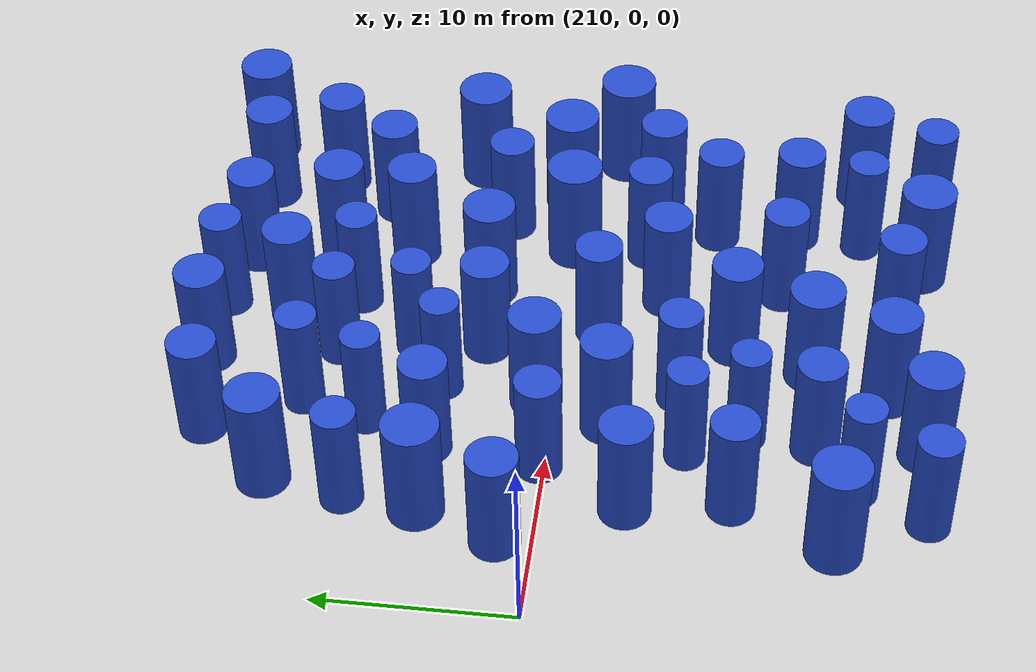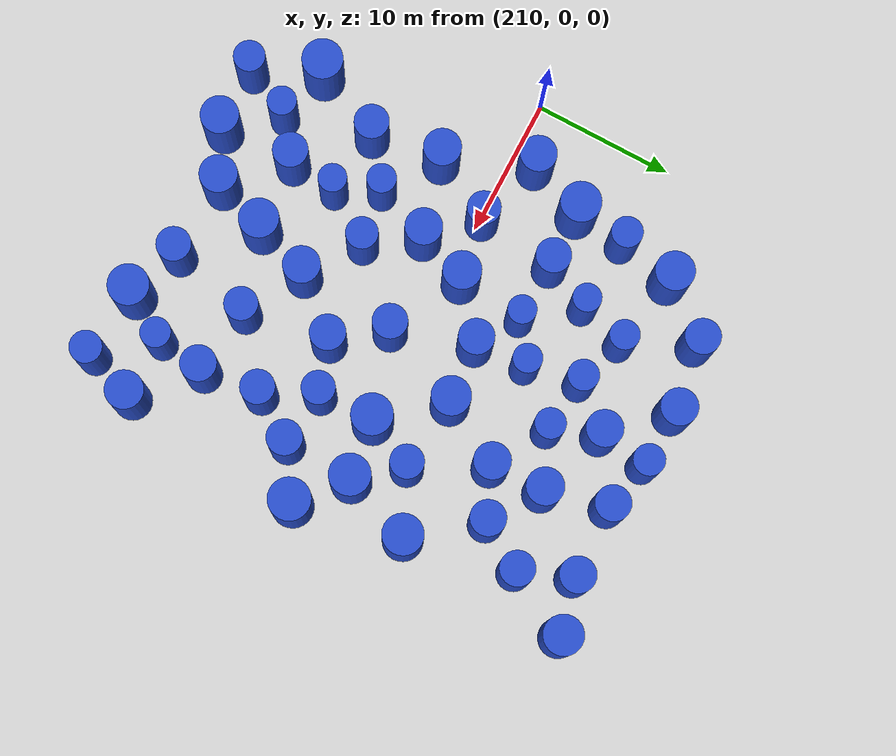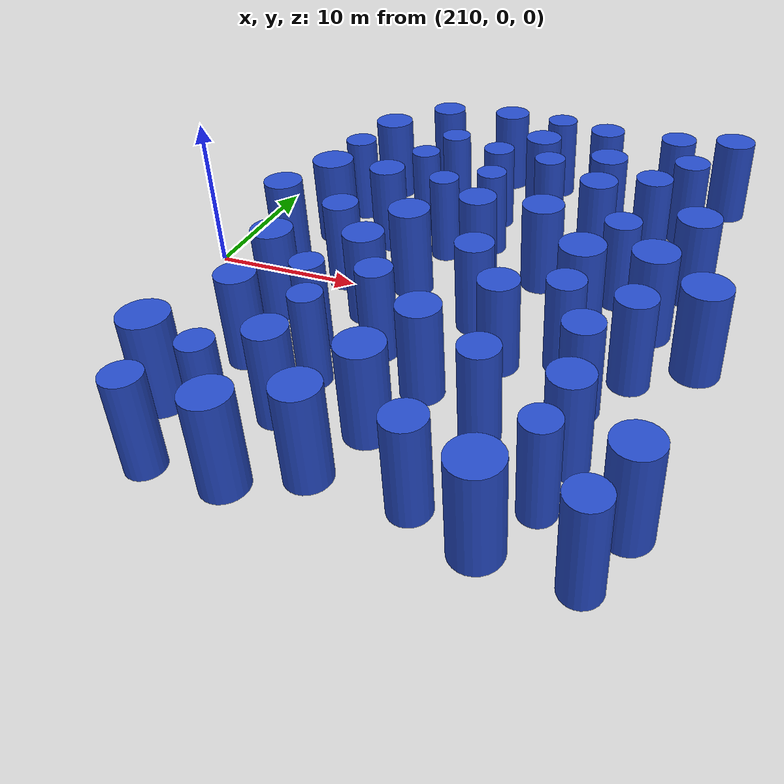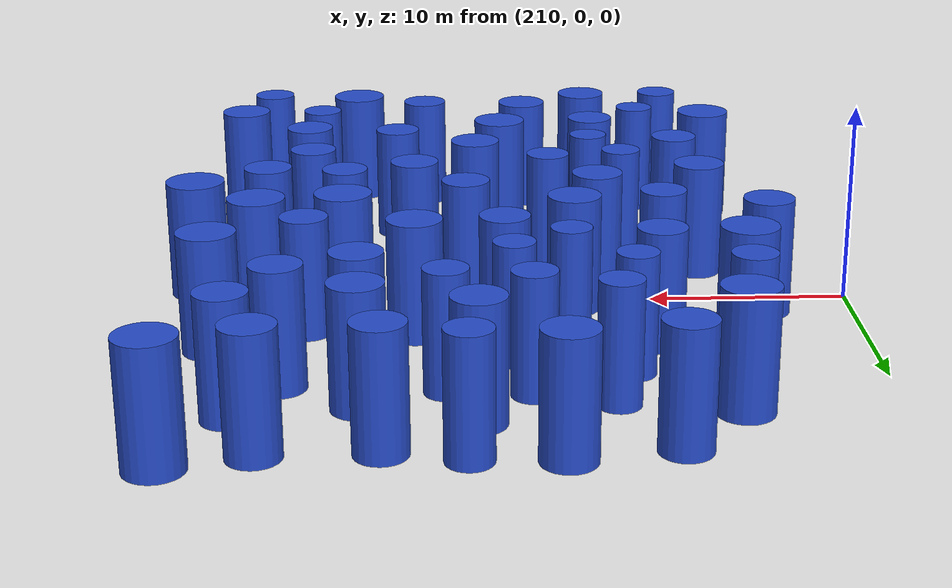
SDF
<sdf version="1.7">
 <world name="default">
  <model name="1">
   <static>1</static>
   <link name="link">
    <inertial>
     <mass>2</mass>
     <inertia><ixx>6.72296</ixx><ixy>0</ixy><ixz>0</ixz><iyy>6.72296</iyy><iyz>0</iyz><izz>1.44593</izz></inertia>
    </inertial>
    <collision name="collision">
     <geometry><cylinder><length>6</length><radius>1.20247</radius></cylinder></geometry>
     <surface><contact><collide_without_contact>1</collide_without_contact></contact></surface>
    </collision>
    <visual name="visual">
     <geometry><cylinder><length>6</length><radius>1.20247</radius></cylinder></geometry>
     <material>
      <script><uri>file://media/materials/scripts/gazebo.material</uri><name>Gazebo/Blue</name></script>
     </material>
    </visual>
    <gravity>0</gravity>
   </link>
   <pose>237.457 -7.39447 3 0 -0 0</pose>
  </model>
  <model name="12">
   <static>1</static>
   <link name="link">
    <inertial>
     <mass>2</mass>
     <inertia><ixx>7.10079</ixx><ixy>0</ixy><ixz>0</ixz><iyy>7.10079</iyy><iyz>0</iyz><izz>2.20157</izz></inertia>
    </inertial>
    <collision name="collision">
     <geometry><cylinder><length>6</length><radius>1.48377</radius></cylinder></geometry>
     <surface><contact><collide_without_contact>1</collide_without_contact></contact></surface>
    </collision>
    <visual name="visual">
     <geometry><cylinder><length>6</length><radius>1.48377</radius></cylinder></geometry>
     <material>
      <script><uri>file://media/materials/scripts/gazebo.material</uri><name>Gazebo/Blue</name></script>
     </material>
    </visual>
    <gravity>0</gravity>
   </link>
   <pose>243.054 -1.92681 3 0 -0 0</pose>
  </model>
  <model name="14">
   <static>1</static>
   <link name="link">
    <inertial>
     <mass>2</mass>
     <inertia><ixx>6.81362</ixx><ixy>0</ixy><ixz>0</ixz><iyy>6.81362</iyy><iyz>0</iyz><izz>1.62724</izz></inertia>
    </inertial>
    <collision name="collision">
     <geometry><cylinder><length>6</length><radius>1.27563</radius></cylinder></geometry>
     <surface><contact><collide_without_contact>1</collide_without_contact></contact></surface>
    </collision>
    <visual name="visual">
     <geometry><cylinder><length>6</length><radius>1.27563</radius></cylinder></geometry>
     <material>
      <script><uri>file://media/materials/scripts/gazebo.material</uri><name>Gazebo/Blue</name></script>
     </material>
    </visual>
    <gravity>0</gravity>
   </link>
   <pose>214.441 1.7766 3 0 -0 0</pose>
  </model>
  <model name="40">
   <static>1</static>
   <link name="link">
    <inertial>
     <mass>2</mass>
     <inertia><ixx>6.63334</ixx><ixy>0</ixy><ixz>0</ixz><iyy>6.63334</iyy><iyz>0</iyz><izz>1.26667</izz></inertia>
    </inertial>
    <collision name="collision">
     <geometry><cylinder><length>6</length><radius>1.12547</radius></cylinder></geometry>
     <surface><contact><collide_without_contact>1</collide_without_contact></contact></surface>
    </collision>
    <visual name="visual">
     <geometry><cylinder><length>6</length><radius>1.12547</radius></cylinder></geometry>
     <material>
      <script><uri>file://media/materials/scripts/gazebo.material</uri><name>Gazebo/Blue</name></script>
     </material>
    </visual>
    <gravity>0</gravity>
   </link>
   <pose>224.929 -6.194 3 0 -0 0</pose>
  </model>
  <model name="43">
   <static>1</static>
   <link name="link">
    <inertial>
     <mass>2</mass>
     <inertia><ixx>6.85876</ixx><ixy>0</ixy><ixz>0</ixz><iyy>6.85876</iyy><iyz>0</iyz><izz>1.71751</izz></inertia>
    </inertial>
    <collision name="collision">
     <geometry><cylinder><length>6</length><radius>1.31054</radius></cylinder></geometry>
     <surface><contact><collide_without_contact>1</collide_without_contact></contact></surface>
    </collision>
    <visual name="visual">
     <geometry><cylinder><length>6</length><radius>1.31054</radius></cylinder></geometry>
     <material>
      <script><uri>file://media/materials/scripts/gazebo.material</uri><name>Gazebo/Blue</name></script>
     </material>
    </visual>
    <gravity>0</gravity>
   </link>
   <pose>217.121 -4.18579 3 0 -0 0</pose>
  </model>
  <model name="49">
   <static>1</static>
   <link name="link">
    <inertial>
     <mass>2</mass>
     <inertia><ixx>6.8201</ixx><ixy>0</ixy><ixz>0</ixz><iyy>6.8201</iyy><iyz>0</iyz><izz>1.6402</izz></inertia>
    </inertial>
    <collision name="collision">
     <geometry><cylinder><length>6</length><radius>1.2807</radius></cylinder></geometry>
     <surface><contact><collide_without_contact>1</collide_without_contact></contact></surface>
    </collision>
    <visual name="visual">
     <geometry><cylinder><length>6</length><radius>1.2807</radius></cylinder></geometry>
     <material>
      <script><uri>file://media/materials/scripts/gazebo.material</uri><name>Gazebo/Blue</name></script>
     </material>
    </visual>
    <gravity>0</gravity>
   </link>
   <pose>228.991 14.3717 3 0 -0 0</pose>
  </model>
  <model name="53">
   <static>1</static>
   <link name="link">
    <inertial>
     <mass>2</mass>
     <inertia><ixx>6.61246</ixx><ixy>0</ixy><ixz>0</ixz><iyy>6.61246</iyy><iyz>0</iyz><izz>1.22492</izz></inertia>
    </inertial>
    <collision name="collision">
     <geometry><cylinder><length>6</length><radius>1.10676</radius></cylinder></geometry>
     <surface><contact><collide_without_contact>1</collide_without_contact></contact></surface>
    </collision>
    <visual name="visual">
     <geometry><cylinder><length>6</length><radius>1.10676</radius></cylinder></geometry>
     <material>
      <script><uri>file://media/materials/scripts/gazebo.material</uri><name>Gazebo/Blue</name></script>
     </material>
    </visual>
    <gravity>0</gravity>
   </link>
   <pose>217.716 -18.8042 3 0 -0 0</pose>
  </model>
  <model name="57">
   <static>1</static>
   <link name="link">
    <inertial>
     <mass>2</mass>
     <inertia><ixx>6.75214</ixx><ixy>0</ixy><ixz>0</ixz><iyy>6.75214</iyy><iyz>0</iyz><izz>1.50428</izz></inertia>
    </inertial>
    <collision name="collision">
     <geometry><cylinder><length>6</length><radius>1.22649</radius></cylinder></geometry>
     <surface><contact><collide_without_contact>1</collide_without_contact></contact></surface>
    </collision>
    <visual name="visual">
     <geometry><cylinder><length>6</length><radius>1.22649</radius></cylinder></geometry>
     <material>
      <script><uri>file://media/materials/scripts/gazebo.material</uri><name>Gazebo/Blue</name></script>
     </material>
    </visual>
    <gravity>0</gravity>
   </link>
   <pose>239.985 13.568 3 0 -0 0</pose>
  </model>
  <model name="61">
   <static>1</static>
   <link name="link">
    <inertial>
     <mass>2</mass>
     <inertia><ixx>6.52122</ixx><ixy>0</ixy><ixz>0</ixz><iyy>6.52122</iyy><iyz>0</iyz><izz>1.04245</izz></inertia>
    </inertial>
    <collision name="collision">
     <geometry><cylinder><length>6</length><radius>1.021</radius></cylinder></geometry>
     <surface><contact><collide_without_contact>1</collide_without_contact></contact></surface>
    </collision>
    <visual name="visual">
     <geometry><cylinder><length>6</length><radius>1.021</radius></cylinder></geometry>
     <material>
      <script><uri>file://media/materials/scripts/gazebo.material</uri><name>Gazebo/Blue</name></script>
     </material>
    </visual>
    <gravity>0</gravity>
   </link>
   <pose>227.232 7.64189 3 0 -0 0</pose>
  </model>
  <model name="92">
   <static>1</static>
   <link name="link">
    <inertial>
     <mass>2</mass>
     <inertia><ixx>6.77017</ixx><ixy>0</ixy><ixz>0</ixz><iyy>6.77017</iyy><iyz>0</iyz><izz>1.54035</izz></inertia>
    </inertial>
    <collision name="collision">
     <geometry><cylinder><length>6</length><radius>1.24111</radius></cylinder></geometry>
     <surface><contact><collide_without_contact>1</collide_without_contact></contact></surface>
    </collision>
    <visual name="visual">
     <geometry><cylinder><length>6</length><radius>1.24111</radius></cylinder></geometry>
     <material>
      <script><uri>file://media/materials/scripts/gazebo.material</uri><name>Gazebo/Blue</name></script>
     </material>
    </visual>
    <gravity>0</gravity>
   </link>
   <pose>239.59 -4.18065 3 0 -0 0</pose>
  </model>
  <model name="93">
   <static>1</static>
   <link name="link">
    <inertial>
     <mass>2</mass>
     <inertia><ixx>7.01625</ixx><ixy>0</ixy><ixz>0</ixz><iyy>7.01625</iyy><iyz>0</iyz><izz>2.0325</izz></inertia>
    </inertial>
    <collision name="collision">
     <geometry><cylinder><length>6</length><radius>1.42566</radius></cylinder></geometry>
     <surface><contact><collide_without_contact>1</collide_without_contact></contact></surface>
    </collision>
    <visual name="visual">
     <geometry><cylinder><length>6</length><radius>1.42566</radius></cylinder></geometry>
     <material>
      <script><uri>file://media/materials/scripts/gazebo.material</uri><name>Gazebo/Blue</name></script>
     </material>
    </visual>
    <gravity>0</gravity>
   </link>
   <pose>241.568 5.83177 3 0 -0 0</pose>
  </model>
  <model name="103">
   <static>1</static>
   <link name="link">
    <inertial>
     <mass>2</mass>
     <inertia><ixx>6.79317</ixx><ixy>0</ixy><ixz>0</ixz><iyy>6.79317</iyy><iyz>0</iyz><izz>1.58635</izz></inertia>
    </inertial>
    <collision name="collision">
     <geometry><cylinder><length>6</length><radius>1.2595</radius></cylinder></geometry>
     <surface><contact><collide_without_contact>1</collide_without_contact></contact></surface>
    </collision>
    <visual name="visual">
     <geometry><cylinder><length>6</length><radius>1.2595</radius></cylinder></geometry>
     <material>
      <script><uri>file://media/materials/scripts/gazebo.material</uri><name>Gazebo/Blue</name></script>
     </material>
    </visual>
    <gravity>0</gravity>
   </link>
   <pose>237.928 -11.6518 3 0 -0 0</pose>
  </model>
  <model name="104">
   <static>1</static>
   <link name="link">
    <inertial>
     <mass>2</mass>
     <inertia><ixx>6.747</ixx><ixy>0</ixy><ixz>0</ixz><iyy>6.747</iyy><iyz>0</iyz><izz>1.49399</izz></inertia>
    </inertial>
    <collision name="collision">
     <geometry><cylinder><length>6</length><radius>1.22229</radius></cylinder></geometry>
     <surface><contact><collide_without_contact>1</collide_without_contact></contact></surface>
    </collision>
    <visual name="visual">
     <geometry><cylinder><length>6</length><radius>1.22229</radius></cylinder></geometry>
     <material>
      <script><uri>file://media/materials/scripts/gazebo.material</uri><name>Gazebo/Blue</name></script>
     </material>
    </visual>
    <gravity>0</gravity>
   </link>
   <pose>229.358 -1.67233 3 0 -0 0</pose>
  </model>
  <model name="109">
   <static>1</static>
   <link name="link">
    <inertial>
     <mass>2</mass>
     <inertia><ixx>6.82305</ixx><ixy>0</ixy><ixz>0</ixz><iyy>6.82305</iyy><iyz>0</iyz><izz>1.64611</izz></inertia>
    </inertial>
    <collision name="collision">
     <geometry><cylinder><length>6</length><radius>1.28301</radius></cylinder></geometry>
     <surface><contact><collide_without_contact>1</collide_without_contact></contact></surface>
    </collision>
    <visual name="visual">
     <geometry><cylinder><length>6</length><radius>1.28301</radius></cylinder></geometry>
     <material>
      <script><uri>file://media/materials/scripts/gazebo.material</uri><name>Gazebo/Blue</name></script>
     </material>
    </visual>
    <gravity>0</gravity>
   </link>
   <pose>234.443 8.77001 3 0 -0 0</pose>
  </model>
  <model name="121">
   <static>1</static>
   <link name="link">
    <inertial>
     <mass>2</mass>
     <inertia><ixx>6.52935</ixx><ixy>0</ixy><ixz>0</ixz><iyy>6.52935</iyy><iyz>0</iyz><izz>1.05869</izz></inertia>
    </inertial>
    <collision name="collision">
     <geometry><cylinder><length>6</length><radius>1.02893</radius></cylinder></geometry>
     <surface><contact><collide_without_contact>1</collide_without_contact></contact></surface>
    </collision>
    <visual name="visual">
     <geometry><cylinder><length>6</length><radius>1.02893</radius></cylinder></geometry>
     <material>
      <script><uri>file://media/materials/scripts/gazebo.material</uri><name>Gazebo/Blue</name></script>
     </material>
    </visual>
    <gravity>0</gravity>
   </link>
   <pose>220.985 -6.80413 3 0 -0 0</pose>
  </model>
  <model name="135">
   <static>1</static>
   <link name="link">
    <inertial>
     <mass>2</mass>
     <inertia><ixx>6.87917</ixx><ixy>0</ixy><ixz>0</ixz><iyy>6.87917</iyy><iyz>0</iyz><izz>1.75835</izz></inertia>
    </inertial>
    <collision name="collision">
     <geometry><cylinder><length>6</length><radius>1.32603</radius></cylinder></geometry>
     <surface><contact><collide_without_contact>1</collide_without_contact></contact></surface>
    </collision>
    <visual name="visual">
     <geometry><cylinder><length>6</length><radius>1.32603</radius></cylinder></geometry>
     <material>
      <script><uri>file://media/materials/scripts/gazebo.material</uri><name>Gazebo/Blue</name></script>
     </material>
    </visual>
    <gravity>0</gravity>
   </link>
   <pose>225.913 -16.7167 3 0 -0 0</pose>
  </model>
  <model name="159">
   <static>1</static>
   <link name="link">
    <inertial>
     <mass>2</mass>
     <inertia><ixx>6.56113</ixx><ixy>0</ixy><ixz>0</ixz><iyy>6.56113</iyy><iyz>0</iyz><izz>1.12225</izz></inertia>
    </inertial>
    <collision name="collision">
     <geometry><cylinder><length>6</length><radius>1.05937</radius></cylinder></geometry>
     <surface><contact><collide_without_contact>1</collide_without_contact></contact></surface>
    </collision>
    <visual name="visual">
     <geometry><cylinder><length>6</length><radius>1.05937</radius></cylinder></geometry>
     <material>
      <script><uri>file://media/materials/scripts/gazebo.material</uri><name>Gazebo/Blue</name></script>
     </material>
    </visual>
    <gravity>0</gravity>
   </link>
   <pose>237.447 -15.1941 3 0 -0 0</pose>
  </model>
  <model name="171">
   <static>1</static>
   <link name="link">
    <inertial>
     <mass>2</mass>
     <inertia><ixx>6.76937</ixx><ixy>0</ixy><ixz>0</ixz><iyy>6.76937</iyy><iyz>0</iyz><izz>1.53873</izz></inertia>
    </inertial>
    <collision name="collision">
     <geometry><cylinder><length>6</length><radius>1.24046</radius></cylinder></geometry>
     <surface><contact><collide_without_contact>1</collide_without_contact></contact></surface>
    </collision>
    <visual name="visual">
     <geometry><cylinder><length>6</length><radius>1.24046</radius></cylinder></geometry>
     <material>
      <script><uri>file://media/materials/scripts/gazebo.material</uri><name>Gazebo/Blue</name></script>
     </material>
    </visual>
    <gravity>0</gravity>
   </link>
   <pose>220.376 17.3222 3 0 -0 0</pose>
  </model>
  <model name="172">
   <static>1</static>
   <link name="link">
    <inertial>
     <mass>2</mass>
     <inertia><ixx>6.74493</ixx><ixy>0</ixy><ixz>0</ixz><iyy>6.74493</iyy><iyz>0</iyz><izz>1.48986</izz></inertia>
    </inertial>
    <collision name="collision">
     <geometry><cylinder><length>6</length><radius>1.2206</radius></cylinder></geometry>
     <surface><contact><collide_without_contact>1</collide_without_contact></contact></surface>
    </collision>
    <visual name="visual">
     <geometry><cylinder><length>6</length><radius>1.2206</radius></cylinder></geometry>
     <material>
      <script><uri>file://media/materials/scripts/gazebo.material</uri><name>Gazebo/Blue</name></script>
     </material>
    </visual>
    <gravity>0</gravity>
   </link>
   <pose>220.188 5.92795 3 0 -0 0</pose>
  </model>
  <model name="178">
   <static>1</static>
   <link name="link">
    <inertial>
     <mass>2</mass>
     <inertia><ixx>6.75808</ixx><ixy>0</ixy><ixz>0</ixz><iyy>6.75808</iyy><iyz>0</iyz><izz>1.51616</izz></inertia>
    </inertial>
    <collision name="collision">
     <geometry><cylinder><length>6</length><radius>1.23132</radius></cylinder></geometry>
     <surface><contact><collide_without_contact>1</collide_without_contact></contact></surface>
    </collision>
    <visual name="visual">
     <geometry><cylinder><length>6</length><radius>1.23132</radius></cylinder></geometry>
     <material>
      <script><uri>file://media/materials/scripts/gazebo.material</uri><name>Gazebo/Blue</name></script>
     </material>
    </visual>
    <gravity>0</gravity>
   </link>
   <pose>222.158 -13.2068 3 0 -0 0</pose>
  </model>
  <model name="193">
   <static>1</static>
   <link name="link">
    <inertial>
     <mass>2</mass>
     <inertia><ixx>6.69809</ixx><ixy>0</ixy><ixz>0</ixz><iyy>6.69809</iyy><iyz>0</iyz><izz>1.39617</izz></inertia>
    </inertial>
    <collision name="collision">
     <geometry><cylinder><length>6</length><radius>1.1816</radius></cylinder></geometry>
     <surface><contact><collide_without_contact>1</collide_without_contact></contact></surface>
    </collision>
    <visual name="visual">
     <geometry><cylinder><length>6</length><radius>1.1816</radius></cylinder></geometry>
     <material>
      <script><uri>file://media/materials/scripts/gazebo.material</uri><name>Gazebo/Blue</name></script>
     </material>
    </visual>
    <gravity>0</gravity>
   </link>
   <pose>237.167 3.79014 3 0 -0 0</pose>
  </model>
  <model name="197">
   <static>1</static>
   <link name="link">
    <inertial>
     <mass>2</mass>
     <inertia><ixx>6.84828</ixx><ixy>0</ixy><ixz>0</ixz><iyy>6.84828</iyy><iyz>0</iyz><izz>1.69657</izz></inertia>
    </inertial>
    <collision name="collision">
     <geometry><cylinder><length>6</length><radius>1.30252</radius></cylinder></geometry>
     <surface><contact><collide_without_contact>1</collide_without_contact></contact></surface>
    </collision>
    <visual name="visual">
     <geometry><cylinder><length>6</length><radius>1.30252</radius></cylinder></geometry>
     <material>
      <script><uri>file://media/materials/scripts/gazebo.material</uri><name>Gazebo/Blue</name></script>
     </material>
    </visual>
    <gravity>0</gravity>
   </link>
   <pose>228.763 -8.75945 3 0 -0 0</pose>
  </model>
  <model name="199">
   <static>1</static>
   <link name="link">
    <inertial>
     <mass>2</mass>
     <inertia><ixx>6.96785</ixx><ixy>0</ixy><ixz>0</ixz><iyy>6.96785</iyy><iyz>0</iyz><izz>1.9357</izz></inertia>
    </inertial>
    <collision name="collision">
     <geometry><cylinder><length>6</length><radius>1.3913</radius></cylinder></geometry>
     <surface><contact><collide_without_contact>1</collide_without_contact></contact></surface>
    </collision>
    <visual name="visual">
     <geometry><cylinder><length>6</length><radius>1.3913</radius></cylinder></geometry>
     <material>
      <script><uri>file://media/materials/scripts/gazebo.material</uri><name>Gazebo/Blue</name></script>
     </material>
    </visual>
    <gravity>0</gravity>
   </link>
   <pose>227.32 -12.8276 3 0 -0 0</pose>
  </model>
  <model name="208">
   <static>1</static>
   <link name="link">
    <inertial>
     <mass>2</mass>
     <inertia><ixx>6.72252</ixx><ixy>0</ixy><ixz>0</ixz><iyy>6.72252</iyy><iyz>0</iyz><izz>1.44505</izz></inertia>
    </inertial>
    <collision name="collision">
     <geometry><cylinder><length>6</length><radius>1.2021</radius></cylinder></geometry>
     <surface><contact><collide_without_contact>1</collide_without_contact></contact></surface>
    </collision>
    <visual name="visual">
     <geometry><cylinder><length>6</length><radius>1.2021</radius></cylinder></geometry>
     <material>
      <script><uri>file://media/materials/scripts/gazebo.material</uri><name>Gazebo/Blue</name></script>
     </material>
    </visual>
    <gravity>0</gravity>
   </link>
   <pose>231.586 -17.0417 3 0 -0 0</pose>
  </model>
  <model name="258">
   <static>1</static>
   <link name="link">
    <inertial>
     <mass>2</mass>
     <inertia><ixx>6.93918</ixx><ixy>0</ixy><ixz>0</ixz><iyy>6.93918</iyy><iyz>0</iyz><izz>1.87835</izz></inertia>
    </inertial>
    <collision name="collision">
     <geometry><cylinder><length>6</length><radius>1.37053</radius></cylinder></geometry>
     <surface><contact><collide_without_contact>1</collide_without_contact></contact></surface>
    </collision>
    <visual name="visual">
     <geometry><cylinder><length>6</length><radius>1.37053</radius></cylinder></geometry>
     <material>
      <script><uri>file://media/materials/scripts/gazebo.material</uri><name>Gazebo/Blue</name></script>
     </material>
    </visual>
    <gravity>0</gravity>
   </link>
   <pose>231.877 4.31313 3 0 -0 0</pose>
  </model>
  <model name="283">
   <static>1</static>
   <link name="link">
    <inertial>
     <mass>2</mass>
     <inertia><ixx>6.5439</ixx><ixy>0</ixy><ixz>0</ixz><iyy>6.5439</iyy><iyz>0</iyz><izz>1.08781</izz></inertia>
    </inertial>
    <collision name="collision">
     <geometry><cylinder><length>6</length><radius>1.04298</radius></cylinder></geometry>
     <surface><contact><collide_without_contact>1</collide_without_contact></contact></surface>
    </collision>
    <visual name="visual">
     <geometry><cylinder><length>6</length><radius>1.04298</radius></cylinder></geometry>
     <material>
      <script><uri>file://media/materials/scripts/gazebo.material</uri><name>Gazebo/Blue</name></script>
     </material>
    </visual>
    <gravity>0</gravity>
   </link>
   <pose>222.748 12.6436 3 0 -0 0</pose>
  </model>
  <model name="285">
   <static>1</static>
   <link name="link">
    <inertial>
     <mass>2</mass>
     <inertia><ixx>7.05129</ixx><ixy>0</ixy><ixz>0</ixz><iyy>7.05129</iyy><iyz>0</iyz><izz>2.10258</izz></inertia>
    </inertial>
    <collision name="collision">
     <geometry><cylinder><length>6</length><radius>1.45003</radius></cylinder></geometry>
     <surface><contact><collide_without_contact>1</collide_without_contact></contact></surface>
    </collision>
    <visual name="visual">
     <geometry><cylinder><length>6</length><radius>1.45003</radius></cylinder></geometry>
     <material>
      <script><uri>file://media/materials/scripts/gazebo.material</uri><name>Gazebo/Blue</name></script>
     </material>
    </visual>
    <gravity>0</gravity>
   </link>
   <pose>235.476 0.234316 3 0 -0 0</pose>
  </model>
  <model name="287">
   <static>1</static>
   <link name="link">
    <inertial>
     <mass>2</mass>
     <inertia><ixx>6.63639</ixx><ixy>0</ixy><ixz>0</ixz><iyy>6.63639</iyy><iyz>0</iyz><izz>1.27278</izz></inertia>
    </inertial>
    <collision name="collision">
     <geometry><cylinder><length>6</length><radius>1.12818</radius></cylinder></geometry>
     <surface><contact><collide_without_contact>1</collide_without_contact></contact></surface>
    </collision>
    <visual name="visual">
     <geometry><cylinder><length>6</length><radius>1.12818</radius></cylinder></geometry>
     <material>
      <script><uri>file://media/materials/scripts/gazebo.material</uri><name>Gazebo/Blue</name></script>
     </material>
    </visual>
    <gravity>0</gravity>
   </link>
   <pose>240.509 -18.8322 3 0 -0 0</pose>
  </model>
  <model name="295">
   <static>1</static>
   <link name="link">
    <inertial>
     <mass>2</mass>
     <inertia><ixx>6.85021</ixx><ixy>0</ixy><ixz>0</ixz><iyy>6.85021</iyy><iyz>0</iyz><izz>1.70043</izz></inertia>
    </inertial>
    <collision name="collision">
     <geometry><cylinder><length>6</length><radius>1.304</radius></cylinder></geometry>
     <surface><contact><collide_without_contact>1</collide_without_contact></contact></surface>
    </collision>
    <visual name="visual">
     <geometry><cylinder><length>6</length><radius>1.304</radius></cylinder></geometry>
     <material>
      <script><uri>file://media/materials/scripts/gazebo.material</uri><name>Gazebo/Blue</name></script>
     </material>
    </visual>
    <gravity>0</gravity>
   </link>
   <pose>234.293 12.6656 3 0 -0 0</pose>
  </model>
  <model name="305">
   <static>1</static>
   <link name="link">
    <inertial>
     <mass>2</mass>
     <inertia><ixx>6.90009</ixx><ixy>0</ixy><ixz>0</ixz><iyy>6.90009</iyy><iyz>0</iyz><izz>1.80018</izz></inertia>
    </inertial>
    <collision name="collision">
     <geometry><cylinder><length>6</length><radius>1.34171</radius></cylinder></geometry>
     <surface><contact><collide_without_contact>1</collide_without_contact></contact></surface>
    </collision>
    <visual name="visual">
     <geometry><cylinder><length>6</length><radius>1.34171</radius></cylinder></geometry>
     <material>
      <script><uri>file://media/materials/scripts/gazebo.material</uri><name>Gazebo/Blue</name></script>
     </material>
    </visual>
    <gravity>0</gravity>
   </link>
   <pose>223.993 0.967205 3 0 -0 0</pose>
  </model>
  <model name="311">
   <static>1</static>
   <link name="link">
    <inertial>
     <mass>2</mass>
     <inertia><ixx>7.02665</ixx><ixy>0</ixy><ixz>0</ixz><iyy>7.02665</iyy><iyz>0</iyz><izz>2.0533</izz></inertia>
    </inertial>
    <collision name="collision">
     <geometry><cylinder><length>6</length><radius>1.43293</radius></cylinder></geometry>
     <surface><contact><collide_without_contact>1</collide_without_contact></contact></surface>
    </collision>
    <visual name="visual">
     <geometry><cylinder><length>6</length><radius>1.43293</radius></cylinder></geometry>
     <material>
      <script><uri>file://media/materials/scripts/gazebo.material</uri><name>Gazebo/Blue</name></script>
     </material>
    </visual>
    <gravity>0</gravity>
   </link>
   <pose>215.538 -14.3063 3 0 -0 0</pose>
  </model>
  <model name="322">
   <static>1</static>
   <link name="link">
    <inertial>
     <mass>2</mass>
     <inertia><ixx>6.6876</ixx><ixy>0</ixy><ixz>0</ixz><iyy>6.6876</iyy><iyz>0</iyz><izz>1.3752</izz></inertia>
    </inertial>
    <collision name="collision">
     <geometry><cylinder><length>6</length><radius>1.17269</radius></cylinder></geometry>
     <surface><contact><collide_without_contact>1</collide_without_contact></contact></surface>
    </collision>
    <visual name="visual">
     <geometry><cylinder><length>6</length><radius>1.17269</radius></cylinder></geometry>
     <material>
      <script><uri>file://media/materials/scripts/gazebo.material</uri><name>Gazebo/Blue</name></script>
     </material>
    </visual>
    <gravity>0</gravity>
   </link>
   <pose>233.027 -11.0739 3 0 -0 0</pose>
  </model>
  <model name="343">
   <static>1</static>
   <link name="link">
    <inertial>
     <mass>2</mass>
     <inertia><ixx>6.73536</ixx><ixy>0</ixy><ixz>0</ixz><iyy>6.73536</iyy><iyz>0</iyz><izz>1.47072</izz></inertia>
    </inertial>
    <collision name="collision">
     <geometry><cylinder><length>6</length><radius>1.21273</radius></cylinder></geometry>
     <surface><contact><collide_without_contact>1</collide_without_contact></contact></surface>
    </collision>
    <visual name="visual">
     <geometry><cylinder><length>6</length><radius>1.21273</radius></cylinder></geometry>
     <material>
      <script><uri>file://media/materials/scripts/gazebo.material</uri><name>Gazebo/Blue</name></script>
     </material>
    </visual>
    <gravity>0</gravity>
   </link>
   <pose>217.82 -9.27055 3 0 -0 0</pose>
  </model>
  <model name="349">
   <static>1</static>
   <link name="link">
    <inertial>
     <mass>2</mass>
     <inertia><ixx>6.77122</ixx><ixy>0</ixy><ixz>0</ixz><iyy>6.77122</iyy><iyz>0</iyz><izz>1.54245</izz></inertia>
    </inertial>
    <collision name="collision">
     <geometry><cylinder><length>6</length><radius>1.24195</radius></cylinder></geometry>
     <surface><contact><collide_without_contact>1</collide_without_contact></contact></surface>
    </collision>
    <visual name="visual">
     <geometry><cylinder><length>6</length><radius>1.24195</radius></cylinder></geometry>
     <material>
      <script><uri>file://media/materials/scripts/gazebo.material</uri><name>Gazebo/Blue</name></script>
     </material>
    </visual>
    <gravity>0</gravity>
   </link>
   <pose>233.164 17.1607 3 0 -0 0</pose>
  </model>
  <model name="369">
   <static>1</static>
   <link name="link">
    <inertial>
     <mass>2</mass>
     <inertia><ixx>6.60499</ixx><ixy>0</ixy><ixz>0</ixz><iyy>6.60499</iyy><iyz>0</iyz><izz>1.20998</izz></inertia>
    </inertial>
    <collision name="collision">
     <geometry><cylinder><length>6</length><radius>1.09999</radius></cylinder></geometry>
     <surface><contact><collide_without_contact>1</collide_without_contact></contact></surface>
    </collision>
    <visual name="visual">
     <geometry><cylinder><length>6</length><radius>1.09999</radius></cylinder></geometry>
     <material>
      <script><uri>file://media/materials/scripts/gazebo.material</uri><name>Gazebo/Blue</name></script>
     </material>
    </visual>
    <gravity>0</gravity>
   </link>
   <pose>229.467 17.9452 3 0 -0 0</pose>
  </model>
  <model name="370">
   <static>1</static>
   <link name="link">
    <inertial>
     <mass>2</mass>
     <inertia><ixx>6.77981</ixx><ixy>0</ixy><ixz>0</ixz><iyy>6.77981</iyy><iyz>0</iyz><izz>1.55961</izz></inertia>
    </inertial>
    <collision name="collision">
     <geometry><cylinder><length>6</length><radius>1.24885</radius></cylinder></geometry>
     <surface><contact><collide_without_contact>1</collide_without_contact></contact></surface>
    </collision>
    <visual name="visual">
     <geometry><cylinder><length>6</length><radius>1.24885</radius></cylinder></geometry>
     <material>
      <script><uri>file://media/materials/scripts/gazebo.material</uri><name>Gazebo/Blue</name></script>
     </material>
    </visual>
    <gravity>0</gravity>
   </link>
   <pose>232.002 -5.00909 3 0 -0 0</pose>
  </model>
  <model name="383">
   <static>1</static>
   <link name="link">
    <inertial>
     <mass>2</mass>
     <inertia><ixx>6.93704</ixx><ixy>0</ixy><ixz>0</ixz><iyy>6.93704</iyy><iyz>0</iyz><izz>1.87409</izz></inertia>
    </inertial>
    <collision name="collision">
     <geometry><cylinder><length>6</length><radius>1.36897</radius></cylinder></geometry>
     <surface><contact><collide_without_contact>1</collide_without_contact></contact></surface>
    </collision>
    <visual name="visual">
     <geometry><cylinder><length>6</length><radius>1.36897</radius></cylinder></geometry>
     <material>
      <script><uri>file://media/materials/scripts/gazebo.material</uri><name>Gazebo/Blue</name></script>
     </material>
    </visual>
    <gravity>0</gravity>
   </link>
   <pose>217.273 13.6389 3 0 -0 0</pose>
  </model>
  <model name="394">
   <static>1</static>
   <link name="link">
    <inertial>
     <mass>2</mass>
     <inertia><ixx>6.7915</ixx><ixy>0</ixy><ixz>0</ixz><iyy>6.7915</iyy><iyz>0</iyz><izz>1.58301</izz></inertia>
    </inertial>
    <collision name="collision">
     <geometry><cylinder><length>6</length><radius>1.25818</radius></cylinder></geometry>
     <surface><contact><collide_without_contact>1</collide_without_contact></contact></surface>
    </collision>
    <visual name="visual">
     <geometry><cylinder><length>6</length><radius>1.25818</radius></cylinder></geometry>
     <material>
      <script><uri>file://media/materials/scripts/gazebo.material</uri><name>Gazebo/Blue</name></script>
     </material>
    </visual>
    <gravity>0</gravity>
   </link>
   <pose>238.461 17.286 3 0 -0 0</pose>
  </model>
  <model name="398">
   <static>1</static>
   <link name="link">
    <inertial>
     <mass>2</mass>
     <inertia><ixx>6.83985</ixx><ixy>0</ixy><ixz>0</ixz><iyy>6.83985</iyy><iyz>0</iyz><izz>1.6797</izz></inertia>
    </inertial>
    <collision name="collision">
     <geometry><cylinder><length>6</length><radius>1.29603</radius></cylinder></geometry>
     <surface><contact><collide_without_contact>1</collide_without_contact></contact></surface>
    </collision>
    <visual name="visual">
     <geometry><cylinder><length>6</length><radius>1.29603</radius></cylinder></geometry>
     <material>
      <script><uri>file://media/materials/scripts/gazebo.material</uri><name>Gazebo/Blue</name></script>
     </material>
    </visual>
    <gravity>0</gravity>
   </link>
   <pose>225.349 18.0998 3 0 -0 0</pose>
  </model>
  <model name="400">
   <static>1</static>
   <link name="link">
    <inertial>
     <mass>2</mass>
     <inertia><ixx>6.67989</ixx><ixy>0</ixy><ixz>0</ixz><iyy>6.67989</iyy><iyz>0</iyz><izz>1.35978</izz></inertia>
    </inertial>
    <collision name="collision">
     <geometry><cylinder><length>6</length><radius>1.1661</radius></cylinder></geometry>
     <surface><contact><collide_without_contact>1</collide_without_contact></contact></surface>
    </collision>
    <visual name="visual">
     <geometry><cylinder><length>6</length><radius>1.1661</radius></cylinder></geometry>
     <material>
      <script><uri>file://media/materials/scripts/gazebo.material</uri><name>Gazebo/Blue</name></script>
     </material>
    </visual>
    <gravity>0</gravity>
   </link>
   <pose>219.495 0.265085 3 0 -0 0</pose>
  </model>
  <model name="450">
   <static>1</static>
   <link name="link">
    <inertial>
     <mass>2</mass>
     <inertia><ixx>6.89444</ixx><ixy>0</ixy><ixz>0</ixz><iyy>6.89444</iyy><iyz>0</iyz><izz>1.78888</izz></inertia>
    </inertial>
    <collision name="collision">
     <geometry><cylinder><length>6</length><radius>1.33749</radius></cylinder></geometry>
     <surface><contact><collide_without_contact>1</collide_without_contact></contact></surface>
    </collision>
    <visual name="visual">
     <geometry><cylinder><length>6</length><radius>1.33749</radius></cylinder></geometry>
     <material>
      <script><uri>file://media/materials/scripts/gazebo.material</uri><name>Gazebo/Blue</name></script>
     </material>
    </visual>
    <gravity>0</gravity>
   </link>
   <pose>222.277 -18.6149 3 0 -0 0</pose>
  </model>
  <model name="457">
   <static>1</static>
   <link name="link">
    <inertial>
     <mass>2</mass>
     <inertia><ixx>6.57559</ixx><ixy>0</ixy><ixz>0</ixz><iyy>6.57559</iyy><iyz>0</iyz><izz>1.15118</izz></inertia>
    </inertial>
    <collision name="collision">
     <geometry><cylinder><length>6</length><radius>1.07293</radius></cylinder></geometry>
     <surface><contact><collide_without_contact>1</collide_without_contact></contact></surface>
    </collision>
    <visual name="visual">
     <geometry><cylinder><length>6</length><radius>1.07293</radius></cylinder></geometry>
     <material>
      <script><uri>file://media/materials/scripts/gazebo.material</uri><name>Gazebo/Blue</name></script>
     </material>
    </visual>
    <gravity>0</gravity>
   </link>
   <pose>230.4 11.0217 3 0 -0 0</pose>
  </model>
  <model name="458">
   <static>1</static>
   <link name="link">
    <inertial>
     <mass>2</mass>
     <inertia><ixx>7.00838</ixx><ixy>0</ixy><ixz>0</ixz><iyy>7.00838</iyy><iyz>0</iyz><izz>2.01675</izz></inertia>
    </inertial>
    <collision name="collision">
     <geometry><cylinder><length>6</length><radius>1.42012</radius></cylinder></geometry>
     <surface><contact><collide_without_contact>1</collide_without_contact></contact></surface>
    </collision>
    <visual name="visual">
     <geometry><cylinder><length>6</length><radius>1.42012</radius></cylinder></geometry>
     <material>
      <script><uri>file://media/materials/scripts/gazebo.material</uri><name>Gazebo/Blue</name></script>
     </material>
    </visual>
    <gravity>0</gravity>
   </link>
   <pose>216.05 5.85797 3 0 -0 0</pose>
  </model>
  <model name="470">
   <static>1</static>
   <link name="link">
    <inertial>
     <mass>2</mass>
     <inertia><ixx>6.77898</ixx><ixy>0</ixy><ixz>0</ixz><iyy>6.77898</iyy><iyz>0</iyz><izz>1.55796</izz></inertia>
    </inertial>
    <collision name="collision">
     <geometry><cylinder><length>6</length><radius>1.24818</radius></cylinder></geometry>
     <surface><contact><collide_without_contact>1</collide_without_contact></contact></surface>
    </collision>
    <visual name="visual">
     <geometry><cylinder><length>6</length><radius>1.24818</radius></cylinder></geometry>
     <material>
      <script><uri>file://media/materials/scripts/gazebo.material</uri><name>Gazebo/Blue</name></script>
     </material>
    </visual>
    <gravity>0</gravity>
   </link>
   <pose>227.544 3.93698 3 0 -0 0</pose>
  </model>
  <model name="481">
   <static>1</static>
   <link name="link">
    <inertial>
     <mass>2</mass>
     <inertia><ixx>6.9677</ixx><ixy>0</ixy><ixz>0</ixz><iyy>6.9677</iyy><iyz>0</iyz><izz>1.9354</izz></inertia>
    </inertial>
    <collision name="collision">
     <geometry><cylinder><length>6</length><radius>1.39119</radius></cylinder></geometry>
     <surface><contact><collide_without_contact>1</collide_without_contact></contact></surface>
    </collision>
    <visual name="visual">
     <geometry><cylinder><length>6</length><radius>1.39119</radius></cylinder></geometry>
     <material>
      <script><uri>file://media/materials/scripts/gazebo.material</uri><name>Gazebo/Blue</name></script>
     </material>
    </visual>
    <gravity>0</gravity>
   </link>
   <pose>242.43 18.2744 3 0 -0 0</pose>
  </model>
  <model name="513">
   <static>1</static>
   <link name="link">
    <inertial>
     <mass>2</mass>
     <inertia><ixx>6.84029</ixx><ixy>0</ixy><ixz>0</ixz><iyy>6.84029</iyy><iyz>0</iyz><izz>1.68058</izz></inertia>
    </inertial>
    <collision name="collision">
     <geometry><cylinder><length>6</length><radius>1.29637</radius></cylinder></geometry>
     <surface><contact><collide_without_contact>1</collide_without_contact></contact></surface>
    </collision>
    <visual name="visual">
     <geometry><cylinder><length>6</length><radius>1.29637</radius></cylinder></geometry>
     <material>
      <script><uri>file://media/materials/scripts/gazebo.material</uri><name>Gazebo/Blue</name></script>
     </material>
    </visual>
    <gravity>0</gravity>
   </link>
   <pose>222.57 -2.72591 3 0 -0 0</pose>
  </model>
  <model name="523">
   <static>1</static>
   <link name="link">
    <inertial>
     <mass>2</mass>
     <inertia><ixx>6.50302</ixx><ixy>0</ixy><ixz>0</ixz><iyy>6.50302</iyy><iyz>0</iyz><izz>1.00603</izz></inertia>
    </inertial>
    <collision name="collision">
     <geometry><cylinder><length>6</length><radius>1.00301</radius></cylinder></geometry>
     <surface><contact><collide_without_contact>1</collide_without_contact></contact></surface>
    </collision>
    <visual name="visual">
     <geometry><cylinder><length>6</length><radius>1.00301</radius></cylinder></geometry>
     <material>
      <script><uri>file://media/materials/scripts/gazebo.material</uri><name>Gazebo/Blue</name></script>
     </material>
    </visual>
    <gravity>0</gravity>
   </link>
   <pose>224.466 5.78123 3 0 -0 0</pose>
  </model>
  <model name="526">
   <static>1</static>
   <link name="link">
    <inertial>
     <mass>2</mass>
     <inertia><ixx>6.77687</ixx><ixy>0</ixy><ixz>0</ixz><iyy>6.77687</iyy><iyz>0</iyz><izz>1.55374</izz></inertia>
    </inertial>
    <collision name="collision">
     <geometry><cylinder><length>6</length><radius>1.24649</radius></cylinder></geometry>
     <surface><contact><collide_without_contact>1</collide_without_contact></contact></surface>
    </collision>
    <visual name="visual">
     <geometry><cylinder><length>6</length><radius>1.24649</radius></cylinder></geometry>
     <material>
      <script><uri>file://media/materials/scripts/gazebo.material</uri><name>Gazebo/Blue</name></script>
     </material>
    </visual>
    <gravity>0</gravity>
   </link>
   <pose>237.94 10.3029 3 0 -0 0</pose>
  </model>
  <model name="527">
   <static>1</static>
   <link name="link">
    <inertial>
     <mass>2</mass>
     <inertia><ixx>6.59464</ixx><ixy>0</ixy><ixz>0</ixz><iyy>6.59464</iyy><iyz>0</iyz><izz>1.18928</izz></inertia>
    </inertial>
    <collision name="collision">
     <geometry><cylinder><length>6</length><radius>1.09054</radius></cylinder></geometry>
     <surface><contact><collide_without_contact>1</collide_without_contact></contact></surface>
    </collision>
    <visual name="visual">
     <geometry><cylinder><length>6</length><radius>1.09054</radius></cylinder></geometry>
     <material>
      <script><uri>file://media/materials/scripts/gazebo.material</uri><name>Gazebo/Blue</name></script>
     </material>
    </visual>
    <gravity>0</gravity>
   </link>
   <pose>216.433 9.56977 3 0 -0 0</pose>
  </model>
  <model name="533">
   <static>1</static>
   <link name="link">
    <inertial>
     <mass>2</mass>
     <inertia><ixx>6.5</ixx><ixy>0</ixy><ixz>0</ixz><iyy>6.5</iyy><iyz>0</iyz><izz>1</izz></inertia>
    </inertial>
    <collision name="collision">
     <geometry><cylinder><length>6</length><radius>1</radius></cylinder></geometry>
     <surface><contact><collide_without_contact>1</collide_without_contact></contact></surface>
    </collision>
    <visual name="visual">
     <geometry><cylinder><length>6</length><radius>1</radius></cylinder></geometry>
     <material>
      <script><uri>file://media/materials/scripts/gazebo.material</uri><name>Gazebo/Blue</name></script>
     </material>
    </visual>
    <gravity>0</gravity>
   </link>
   <pose>221.696 9.25942 3 0 -0 0</pose>
  </model>
  <model name="535">
   <static>1</static>
   <link name="link">
    <inertial>
     <mass>2</mass>
     <inertia><ixx>7.03569</ixx><ixy>0</ixy><ixz>0</ixz><iyy>7.03569</iyy><iyz>0</iyz><izz>2.07139</izz></inertia>
    </inertial>
    <collision name="collision">
     <geometry><cylinder><length>6</length><radius>1.43923</radius></cylinder></geometry>
     <surface><contact><collide_without_contact>1</collide_without_contact></contact></surface>
    </collision>
    <visual name="visual">
     <geometry><cylinder><length>6</length><radius>1.43923</radius></cylinder></geometry>
     <material>
      <script><uri>file://media/materials/scripts/gazebo.material</uri><name>Gazebo/Blue</name></script>
     </material>
    </visual>
    <gravity>0</gravity>
   </link>
   <pose>235.47 -18.3781 3 0 -0 0</pose>
  </model>
  <model name="536">
   <static>1</static>
   <link name="link">
    <inertial>
     <mass>2</mass>
     <inertia><ixx>7.04436</ixx><ixy>0</ixy><ixz>0</ixz><iyy>7.04436</iyy><iyz>0</iyz><izz>2.08872</izz></inertia>
    </inertial>
    <collision name="collision">
     <geometry><cylinder><length>6</length><radius>1.44524</radius></cylinder></geometry>
     <surface><contact><collide_without_contact>1</collide_without_contact></contact></surface>
    </collision>
    <visual name="visual">
     <geometry><cylinder><length>6</length><radius>1.44524</radius></cylinder></geometry>
     <material>
      <script><uri>file://media/materials/scripts/gazebo.material</uri><name>Gazebo/Blue</name></script>
     </material>
    </visual>
    <gravity>0</gravity>
   </link>
   <pose>239.729 0.842454 3 0 -0 0</pose>
  </model>
  <model name="551">
   <static>1</static>
   <link name="link">
    <inertial>
     <mass>2</mass>
     <inertia><ixx>6.68</ixx><ixy>0</ixy><ixz>0</ixz><iyy>6.68</iyy><iyz>0</iyz><izz>1.36001</izz></inertia>
    </inertial>
    <collision name="collision">
     <geometry><cylinder><length>6</length><radius>1.16619</radius></cylinder></geometry>
     <surface><contact><collide_without_contact>1</collide_without_contact></contact></surface>
    </collision>
    <visual name="visual">
     <geometry><cylinder><length>6</length><radius>1.16619</radius></cylinder></geometry>
     <material>
      <script><uri>file://media/materials/scripts/gazebo.material</uri><name>Gazebo/Blue</name></script>
     </material>
    </visual>
    <gravity>0</gravity>
   </link>
   <pose>235.582 -3.78548 3 0 -0 0</pose>
  </model>
  <model name="555">
   <static>1</static>
   <link name="link">
    <inertial>
     <mass>2</mass>
     <inertia><ixx>6.5</ixx><ixy>0</ixy><ixz>0</ixz><iyy>6.5</iyy><iyz>0</iyz><izz>1</izz></inertia>
    </inertial>
    <collision name="collision">
     <geometry><cylinder><length>6</length><radius>1</radius></cylinder></geometry>
     <surface><contact><collide_without_contact>1</collide_without_contact></contact></surface>
    </collision>
    <visual name="visual">
     <geometry><cylinder><length>6</length><radius>1</radius></cylinder></geometry>
     <material>
      <script><uri>file://media/materials/scripts/gazebo.material</uri><name>Gazebo/Blue</name></script>
     </material>
    </visual>
    <gravity>0</gravity>
   </link>
   <pose>222.521 -9.75748 3 0 -0 0</pose>
  </model>
  <model name="556">
   <static>1</static>
   <link name="link">
    <inertial>
     <mass>2</mass>
     <inertia><ixx>6.89991</ixx><ixy>0</ixy><ixz>0</ixz><iyy>6.89991</iyy><iyz>0</iyz><izz>1.79983</izz></inertia>
    </inertial>
    <collision name="collision">
     <geometry><cylinder><length>6</length><radius>1.34158</radius></cylinder></geometry>
     <surface><contact><collide_without_contact>1</collide_without_contact></contact></surface>
    </collision>
    <visual name="visual">
     <geometry><cylinder><length>6</length><radius>1.34158</radius></cylinder></geometry>
     <material>
      <script><uri>file://media/materials/scripts/gazebo.material</uri><name>Gazebo/Blue</name></script>
     </material>
    </visual>
    <gravity>0</gravity>
   </link>
   <pose>241.823 -15.1568 3 0 -0 0</pose>
  </model>
  <model name="559">
   <static>1</static>
   <link name="link">
    <inertial>
     <mass>2</mass>
     <inertia><ixx>6.58451</ixx><ixy>0</ixy><ixz>0</ixz><iyy>6.58451</iyy><iyz>0</iyz><izz>1.16902</izz></inertia>
    </inertial>
    <collision name="collision">
     <geometry><cylinder><length>6</length><radius>1.08121</radius></cylinder></geometry>
     <surface><contact><collide_without_contact>1</collide_without_contact></contact></surface>
    </collision>
    <visual name="visual">
     <geometry><cylinder><length>6</length><radius>1.08121</radius></cylinder></geometry>
     <material>
      <script><uri>file://media/materials/scripts/gazebo.material</uri><name>Gazebo/Blue</name></script>
     </material>
    </visual>
    <gravity>0</gravity>
   </link>
   <pose>226.477 11.4655 3 0 -0 0</pose>
  </model>
  <model name="565">
   <static>1</static>
   <link name="link">
    <inertial>
     <mass>2</mass>
     <inertia><ixx>6.52873</ixx><ixy>0</ixy><ixz>0</ixz><iyy>6.52873</iyy><iyz>0</iyz><izz>1.05746</izz></inertia>
    </inertial>
    <collision name="collision">
     <geometry><cylinder><length>6</length><radius>1.02833</radius></cylinder></geometry>
     <surface><contact><collide_without_contact>1</collide_without_contact></contact></surface>
    </collision>
    <visual name="visual">
     <geometry><cylinder><length>6</length><radius>1.02833</radius></cylinder></geometry>
     <material>
      <script><uri>file://media/materials/scripts/gazebo.material</uri><name>Gazebo/Blue</name></script>
     </material>
    </visual>
    <gravity>0</gravity>
   </link>
   <pose>219.42 -15.3528 3 0 -0 0</pose>
  </model>
 </world>
</sdf>
